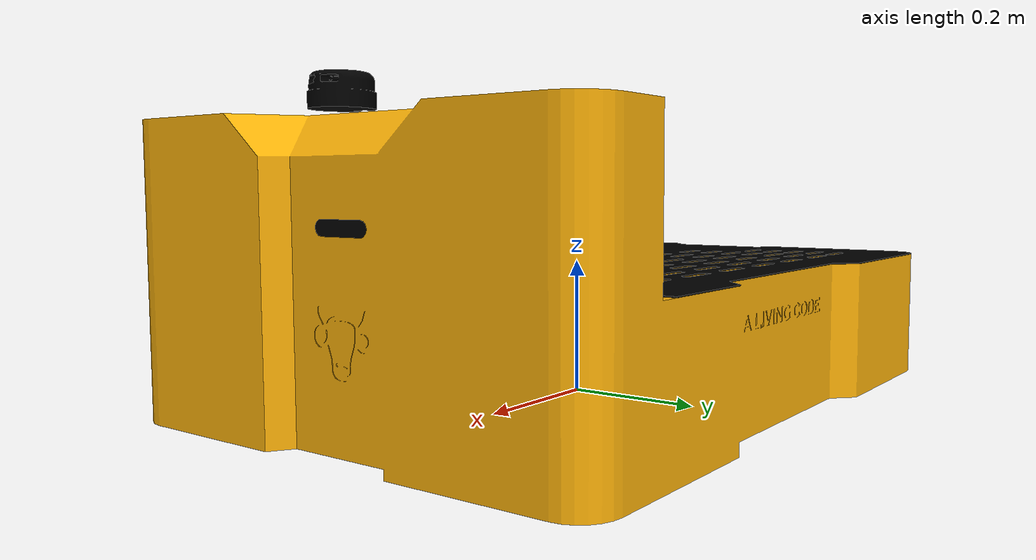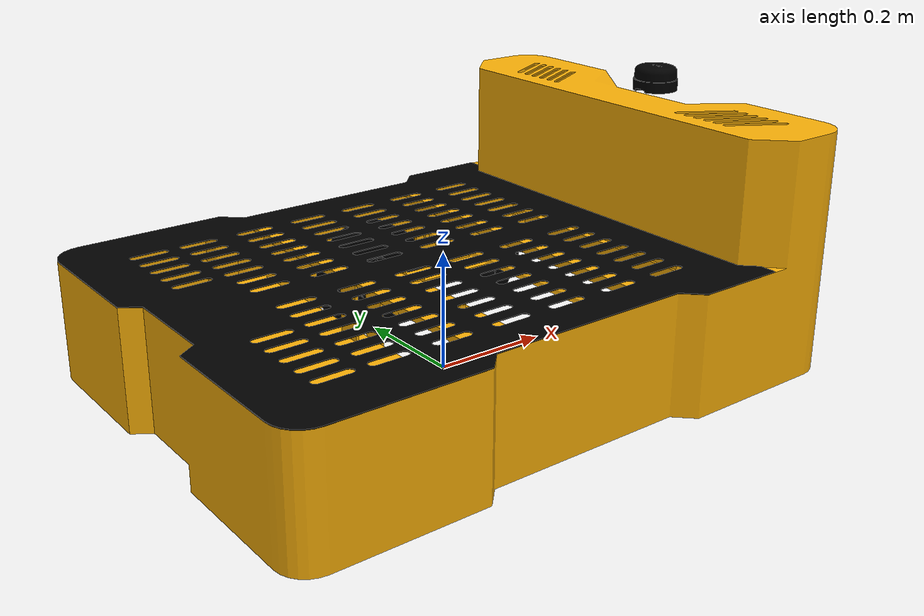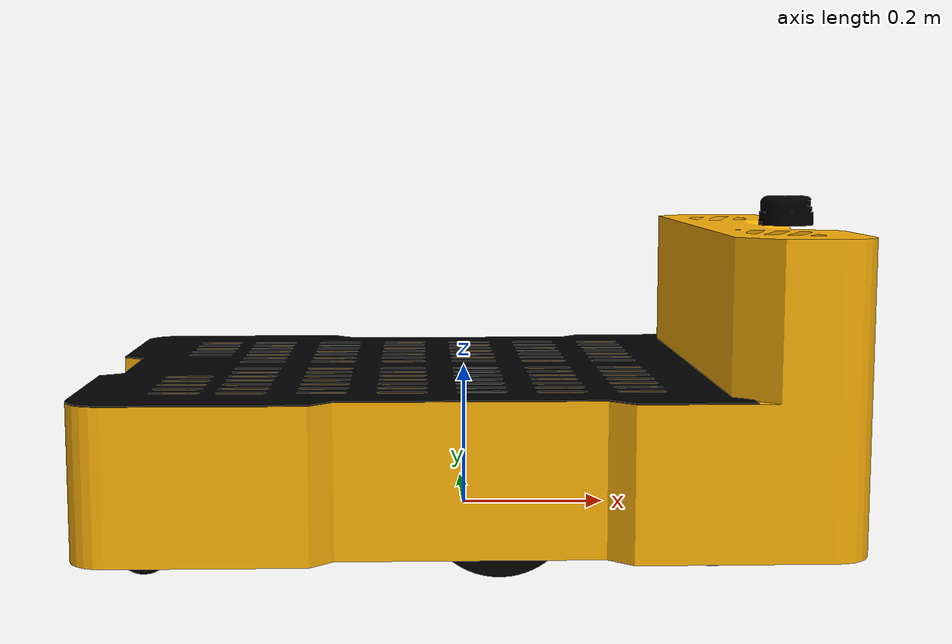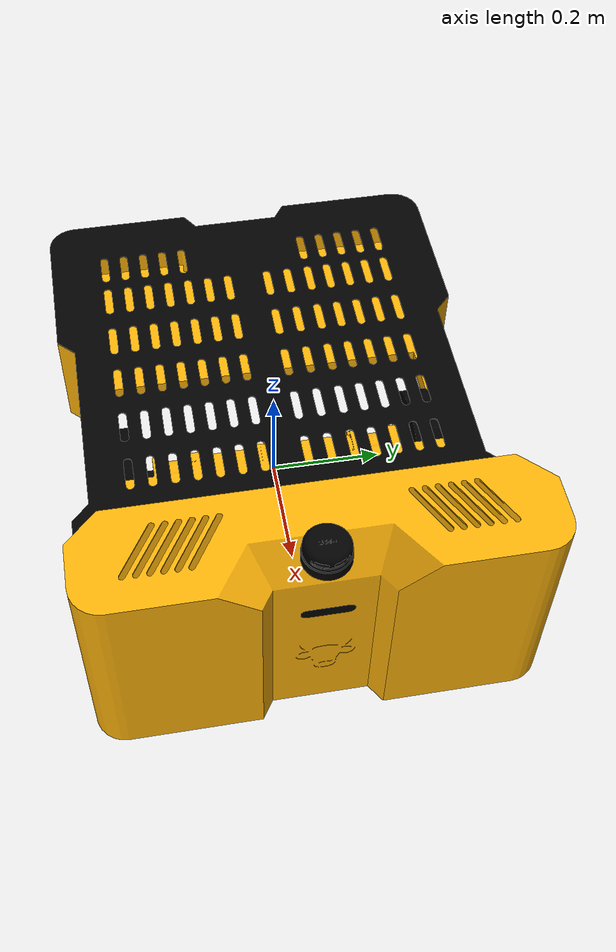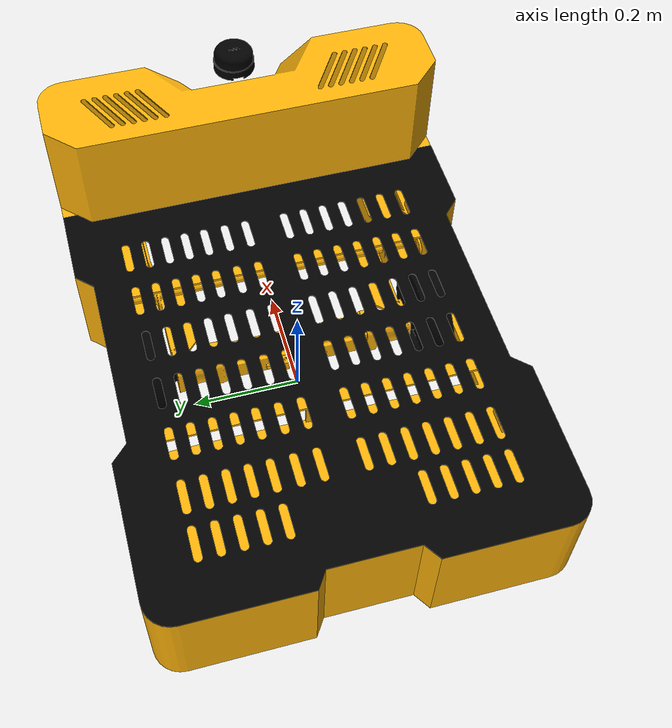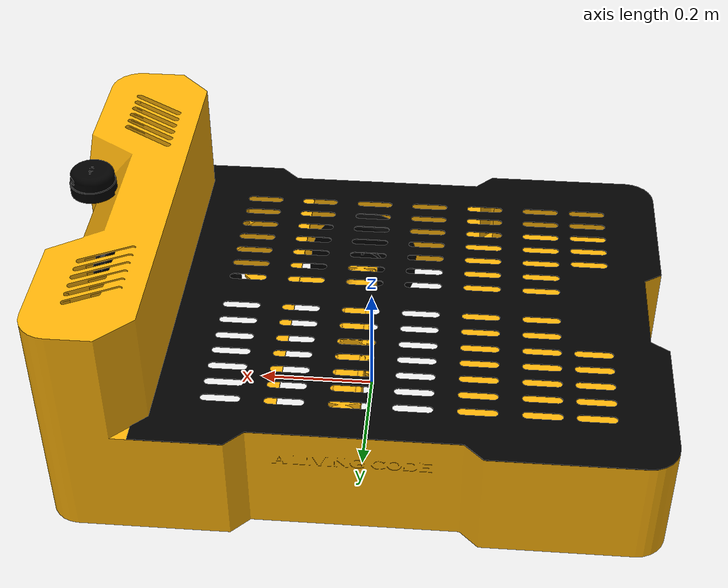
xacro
<?xml version="1.0" ?>
<robot name="diffbot" xmlns:xacro="http://www.ros.org/wiki/xacro">

<xacro:include filename="laser_frame.xacro" />

<link name="base_link"/>
<link name="base_footprint"/>

<link name="chassis">
  <inertial>
    <origin xyz="0.04449761671327678 -5.020656660003861e-05 0.1287808583350702" rpy="0 0 0"/>
    <mass value="90.2440086954087"/>
    <inertia ixx="6.687604" iyy="10.992206" izz="16.260831" ixy="0.004442" iyz="-0.001604" ixz="-0.804662"/>
  </inertial>
  <visual>
    <origin xyz="0 0 0" rpy="0 0 0"/>
    <geometry>
      <mesh filename="package://diffbot_description/meshes/chassis.stl" scale="0.001 0.001 0.001"/>
    </geometry>
      <material name="amber" >
        <color rgba="0.996078431372549 0.7019607843137254 0.03137254901960784 1.0" />
      </material>
  </visual>
  <collision>
    <origin xyz="0 0 0" rpy="0 0 0"/>
    <geometry>
      <mesh filename="package://diffbot_description/meshes/chassis.stl" scale="0.001 0.001 0.001"/>
    </geometry>
  </collision>
</link>

<link name="camera">
  <inertial>
    <origin xyz="-0.013050205703403817 -0.032741927084470594 0.010066458249258947" rpy="0 0 0"/>
    <mass value="0.35127199280616256"/>
    <inertia ixx="0.000227" iyy="3.2e-05" izz="0.000229" ixy="1e-06" iyz="-0.0" ixz="0.0"/>
  </inertial>
  <visual>
    <origin xyz="-0.469779 -0.037329 -0.255605" rpy="0 0 0"/>
    <geometry>
      <mesh filename="package://diffbot_description/meshes/camera.stl" scale="0.001 0.001 0.001"/>
    </geometry>
      <material name="black">
        <color rgba="0.0 0.0 0.0 1.0"/>
      </material>
  </visual>
  <collision>
    <origin xyz="-0.469779 -0.037329 -0.255605" rpy="0 0 0"/>
    <geometry>
      <mesh filename="package://diffbot_description/meshes/camera.stl" scale="0.001 0.001 0.001"/>
    </geometry>
  </collision>
</link>

<link name="top_plate">
  <inertial>
    <origin xyz="0.39576729919266035 -0.00010836803397268681 0.0007502202057759755" rpy="0 0 0"/>
    <mass value="6.035666692441485"/>
    <inertia ixx="0.27137" iyy="0.387794" izz="0.659161" ixy="6.6e-05" iyz="0.0" ixz="-0.0"/>
  </inertial>
  <visual>
    <origin xyz="0.470221 -0.0 -0.199508" rpy="0 0 0"/>
    <geometry>
      <mesh filename="package://diffbot_description/meshes/top_plate.stl" scale="0.001 0.001 0.001"/>
    </geometry>
      <material name="black">
        <color rgba="0.0 0.0 0.0 1.0"/>
      </material>
  </visual>
  <collision>
    <origin xyz="0.470221 -0.0 -0.199508" rpy="0 0 0"/>
    <geometry>
      <mesh filename="package://diffbot_description/meshes/top_plate.stl" scale="0.001 0.001 0.001"/>
    </geometry>
  </collision>
</link>

<link name="caster_2">
  <inertial>
    <origin xyz="0.021849143148478023 9.922003460677287e-05 -0.041940545289794" rpy="0 0 0"/>
    <mass value="1.2902947158309073"/>
    <inertia ixx="0.001055" iyy="0.001612" izz="0.000899" ixy="1e-06" iyz="2e-06" ixz="-0.000384"/>
  </inertial>
  <visual>
    <origin xyz="0.430221 0.265 -0.060258" rpy="0 0 0"/>
    <geometry>
      <mesh filename="package://diffbot_description/meshes/caster_2.stl" scale="0.001 0.001 0.001"/>
    </geometry>
      <material name="black">
        <color rgba="0.0 0.0 0.0 1.0"/>
      </material>
  </visual>
  <collision>
    <origin xyz="0.430221 0.265 -0.060258" rpy="0 0 0"/>
    <geometry>
      <mesh filename="package://diffbot_description/meshes/caster_2.stl" scale="0.001 0.001 0.001"/>
    </geometry>
  </collision>
</link>

<link name="caster_4">
  <inertial>
    <origin xyz="0.021849143148512717 9.922003460649531e-05 -0.04194054528979526" rpy="0 0 0"/>
    <mass value="1.2902947158309073"/>
    <inertia ixx="0.001055" iyy="0.001612" izz="0.000899" ixy="1e-06" iyz="2e-06" ixz="-0.000384"/>
  </inertial>
  <visual>
    <origin xyz="0.430221 -0.265 -0.060258" rpy="0 0 0"/>
    <geometry>
      <mesh filename="package://diffbot_description/meshes/caster_4.stl" scale="0.001 0.001 0.001"/>
    </geometry>
      <material name="black">
        <color rgba="0.0 0.0 0.0 1.0"/>
      </material>
  </visual>
  <collision>
    <origin xyz="0.430221 -0.265 -0.060258" rpy="0 0 0"/>
    <geometry>
      <mesh filename="package://diffbot_description/meshes/caster_4.stl" scale="0.001 0.001 0.001"/>
    </geometry>
  </collision>
</link>

<link name="caster_3">
  <inertial>
    <origin xyz="0.022426077846473602 9.922003456402928e-05 -0.04163529875777808" rpy="0 0 0"/>
    <mass value="1.2902947158309073"/>
    <inertia ixx="0.001066" iyy="0.001612" izz="0.000889" ixy="1e-06" iyz="2e-06" ixz="-0.000382"/>
  </inertial>
  <visual>
    <origin xyz="-0.300777 0.259 -0.063535" rpy="0 0 0"/>
    <geometry>
      <mesh filename="package://diffbot_description/meshes/caster_3.stl" scale="0.001 0.001 0.001"/>
    </geometry>
      <material name="black">
        <color rgba="0.0 0.0 0.0 1.0"/>
      </material>
  </visual>
  <collision>
    <origin xyz="-0.300777 0.259 -0.063535" rpy="0 0 0"/>
    <geometry>
      <mesh filename="package://diffbot_description/meshes/caster_3.stl" scale="0.001 0.001 0.001"/>
    </geometry>
  </collision>
</link>

<link name="caster_1">
  <inertial>
    <origin xyz="0.02156727126016189 9.92200345611427e-05 -0.04208624637518513" rpy="0 0 0"/>
    <mass value="1.2902947158309073"/>
    <inertia ixx="0.00105" iyy="0.001612" izz="0.000904" ixy="1e-06" iyz="2e-06" ixz="-0.000385"/>
  </inertial>
  <visual>
    <origin xyz="-0.299811 -0.259 -0.061268" rpy="0 0 0"/>
    <geometry>
      <mesh filename="package://diffbot_description/meshes/caster_1.stl" scale="0.001 0.001 0.001"/>
    </geometry>
      <material name="black">
        <color rgba="0.0 0.0 0.0 1.0"/>
      </material>
  </visual>
  <collision>
    <origin xyz="-0.299811 -0.259 -0.061268" rpy="0 0 0"/>
    <geometry>
      <mesh filename="package://diffbot_description/meshes/caster_1.stl" scale="0.001 0.001 0.001"/>
    </geometry>
  </collision>
</link>

<link name="right_wheel">
  <inertial>
    <origin xyz="3.043083743950459e-07 0.023468305900506886 -4.7907333001750985e-06" rpy="0 0 0"/>
    <mass value="8.930304198932719"/>
    <inertia ixx="0.028215" iyy="0.053254" izz="0.028215" ixy="0.0" iyz="-1e-06" ixz="-0.0"/>
  </inertial>
  <visual>
    <origin xyz="-0.03685 -0.240882 -0.068034" rpy="0 0 0"/>
    <geometry>
      <mesh filename="package://diffbot_description/meshes/right_wheel.stl" scale="0.001 0.001 0.001"/>
    </geometry>
      <material name="black">
        <color rgba="0.0 0.0 0.0 1.0"/>
      </material>
  </visual>
  <collision>
    <origin xyz="-0.03685 -0.240882 -0.068034" rpy="0 0 0"/>
    <geometry>
      <mesh filename="package://diffbot_description/meshes/right_wheel.stl" scale="0.001 0.001 0.001"/>
    </geometry>
  </collision>
</link>

<link name="left_wheel">
  <inertial>
    <origin xyz="5.1485459125200084e-08 -0.023468121653127533 -5.439411757582335e-06" rpy="0 0 0"/>
    <mass value="8.930304198932717"/>
    <inertia ixx="0.028215" iyy="0.053254" izz="0.028215" ixy="-0.0" iyz="1e-06" ixz="0.0"/>
  </inertial>
  <visual>
    <origin xyz="-0.037733 0.240882 -0.064907" rpy="0 0 0"/>
    <geometry>
      <mesh filename="package://diffbot_description/meshes/left_wheel.stl" scale="0.001 0.001 0.001"/>
    </geometry>
      <material name="black">
        <color rgba="0.0 0.0 0.0 1.0"/>
      </material>
  </visual>
  <collision>
    <origin xyz="-0.037733 0.240882 -0.064907" rpy="0 0 0"/>
    <geometry>
      <mesh filename="package://diffbot_description/meshes/left_wheel.stl" scale="0.001 0.001 0.001"/>
    </geometry>
  </collision>
</link>

<joint name="camera_joint" type="fixed">
  <origin xyz="0.469779 0.037329 0.255605" rpy="0 0 0"/>
  <parent link="chassis"/>
  <child link="camera"/>
</joint>

<joint name="top_plate_joint" type="fixed">
  <origin xyz="-0.470221 0.0 0.199508" rpy="0 0 0"/>
  <parent link="chassis"/>
  <child link="top_plate"/>
</joint>

<joint name="caster_2_joint" type="fixed">
  <origin xyz="-0.430221 -0.265 0.060258" rpy="0 0 0"/>
  <parent link="chassis"/>
  <child link="caster_2"/>
</joint>

<joint name="caster_4_joint" type="fixed">
  <origin xyz="-0.430221 0.265 0.060258" rpy="0 0 0"/>
  <parent link="chassis"/>
  <child link="caster_4"/>
</joint>

<joint name="caster_3_joint" type="fixed">
  <origin xyz="0.300777 -0.259 0.063535" rpy="0 0 0"/>
  <parent link="chassis"/>
  <child link="caster_3"/>
</joint>

<joint name="caster_1_joint" type="fixed">
  <origin xyz="0.299811 0.259 0.061268" rpy="0 0 0"/>
  <parent link="chassis"/>
  <child link="caster_1"/>
</joint>

<joint name="right_wheel_joint" type="continuous">
  <origin xyz="0.03685 0.240882 0.068034" rpy="0 0 0"/>
  <parent link="base_link"/>
  <child link="right_wheel"/>
  <axis xyz="-0.0 1.0 -0.0"/>
</joint>

<joint name="left_wheel_joint" type="continuous">
  <origin xyz="0.037733 -0.240882 0.064907" rpy="0 0 0"/>
  <parent link="base_link"/>
  <child link="left_wheel"/>
  <axis xyz="-0.0 -1.0 0.0"/>
</joint>

<joint name="chassis_joint" type="fixed">
  <origin xyz="0.0 0.0 0.0" rpy="0 0 0"/>
  <parent link="base_link"/>
  <child link="chassis"/>
</joint>

<joint name="base_footprint_joint" type="fixed">
  <origin xyz="0.0 0.0 0.0" rpy="0 0 0"/>
  <parent link="base_link"/>
  <child link="base_footprint"/>
</joint>

</robot>

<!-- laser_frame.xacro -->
<robot xmlns:xacro="http://www.ros.org/wiki/xacro"  name="robot">

<link name="laser_frame">
  <inertial>
    <origin xyz="0.04376484795242852 -1.4743405693421839e-05 0.019298839750102326" rpy="0 0 0"/>
    <mass value="1.2982579906067602"/>
    <inertia ixx="0.000619" iyy="0.00059" izz="0.000863" ixy="0.0" iyz="0.0" ixz="1.7e-05"/>
  </inertial>
  <visual>
    <origin xyz="-0.324779 -0.0 -0.399508" rpy="0 0 0"/>
    <geometry>
      <mesh filename="package://diffbot_description/meshes/laser_frame.stl" scale="0.001 0.001 0.001"/>
    </geometry>
      <material name="black">
        <color rgba="0.0 0.0 0.0 1.0"/>
      </material>
  </visual>
  <collision>
    <origin xyz="0.324779 -0.0 -0.399508" rpy="0 0 0"/>
    <geometry>
      <mesh filename="package://diffbot_description/meshes/laser_frame.stl" scale="0.001 0.001 0.001"/>
    </geometry>
  </collision>
</link>

<joint name="laser_frame_joint" type="fixed">
  <origin xyz="0.414779 0.0 0.399508" rpy="0 0 0"/>
  <parent link="chassis"/>
  <child link="laser_frame"/>
</joint>

</robot>
